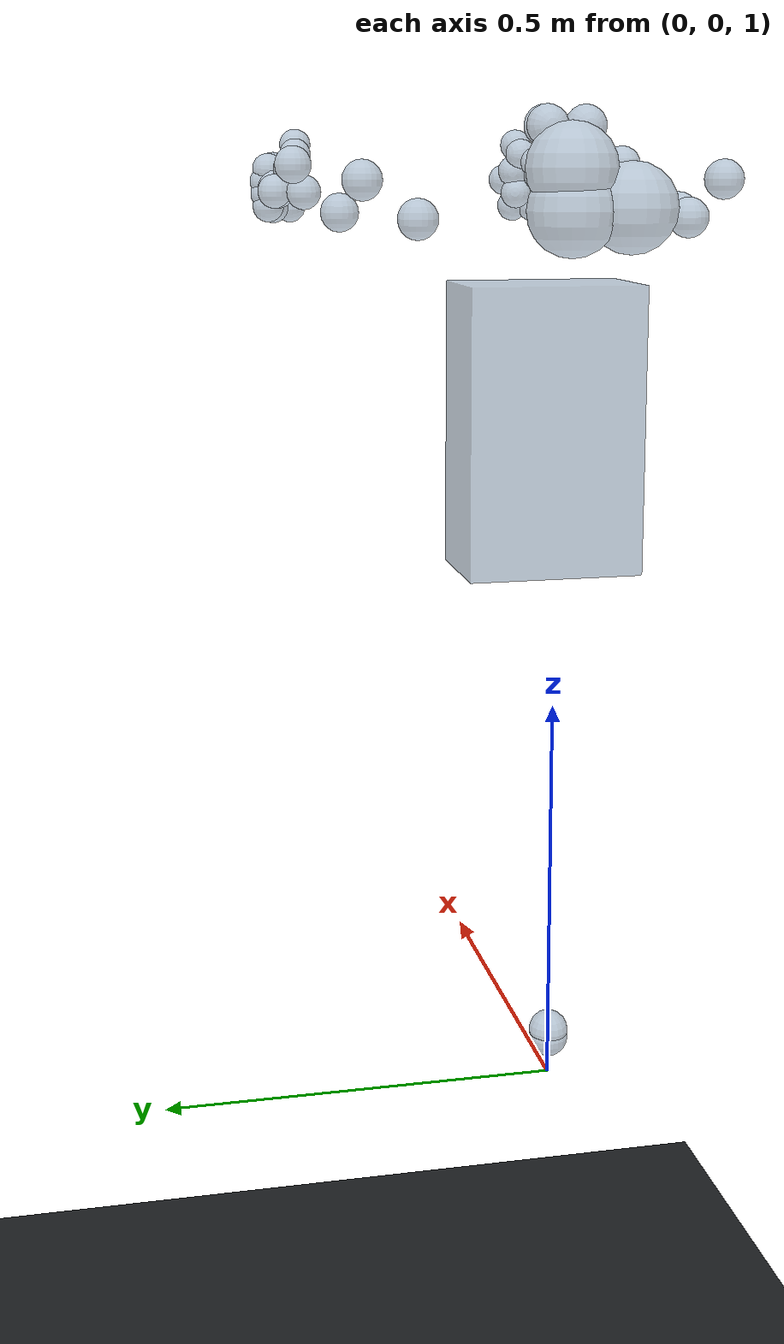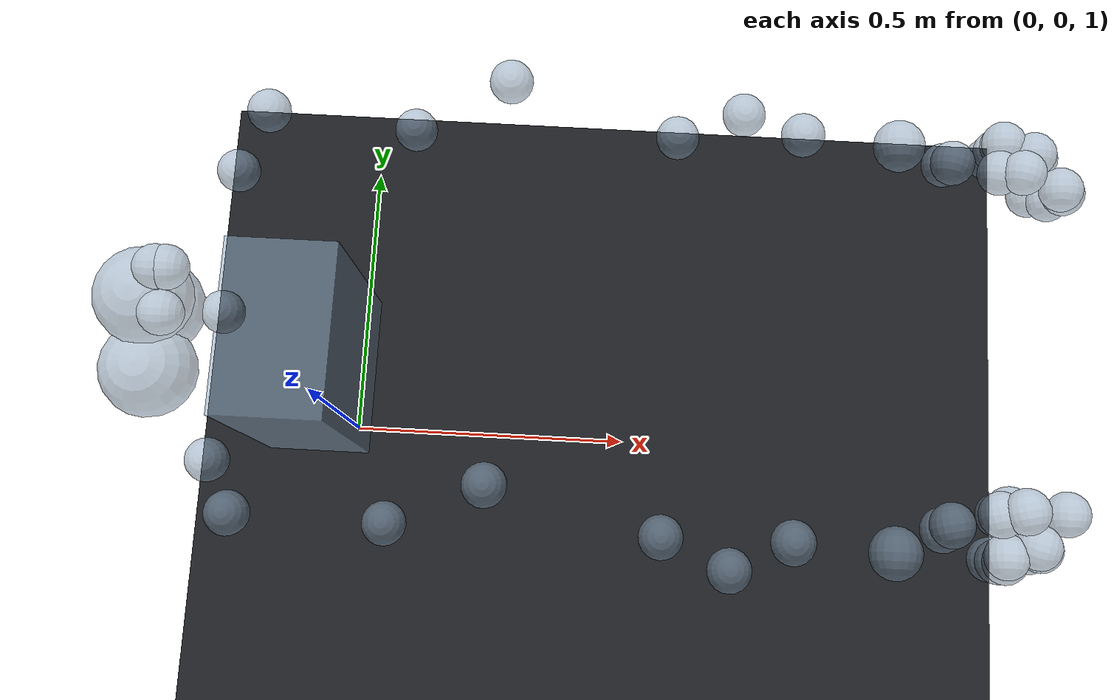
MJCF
<?xml version='1.0' encoding='utf-8'?>
<mujoco model="dexmate_vega_u">
  <compiler angle="radian" />
  <option timestep="0.008333333" gravity="0 0 -9.81" />
  <default>
    <joint damping="0.3" armature="0.01" />
    <geom friction="0.8 0.01 0.001" density="250" />
  </default>
  <worldbody>
    <geom name="floor" type="plane" size="3 3 0.02" rgba="0.12 0.13 0.14 1" />
    <body name="base_link" pos="0 0 1.05">
      <freejoint name="base_link_freejoint" />
      <geom name="base_link_proxy" type="sphere" size="0.025" rgba="0.55 0.65 0.75 0.55" />
      <body name="lift_link" pos="0 0 0.01" quat="0.707109018 0 0 0.7071045443">
        <joint name="Lift" type="slide" axis="0 0 1" damping="0.3" armature="0.01" limited="true" range="0 0.4" />
        <geom name="lift_link_proxy" type="sphere" size="0.025" rgba="0.55 0.65 0.75 0.55" />
        <body name="torso_flip_link" pos="0 -0.06187 0.786" quat="1 0 0 0">
          <joint name="torso_flip" type="hinge" axis="1 0 0" damping="0.3" armature="0.01" limited="true" range="0 1" />
          <geom name="torso_flip_link_proxy" type="box" size="0.11 0.07 0.18" rgba="0.55 0.65 0.75 0.55" />
          <body name="arm_center" pos="0 0.03852 0.25982" quat="0.707109018 0 0 -0.7071045443">
            <geom name="arm_center_proxy" type="sphere" size="0.025" rgba="0.55 0.65 0.75 0.55" />
            <body name="head_l1" pos="-0.0735 -0.0725 0.014" quat="1 0 0 0">
              <joint name="head_j1" type="hinge" axis="0 1 0" damping="0.3" armature="0.01" limited="true" range="-1.483 1.483" />
              <geom name="head_l1_proxy" type="sphere" size="0.055" rgba="0.55 0.65 0.75 0.55" />
              <body name="head_l2" pos="0 0.0725 -0.0035" quat="1 0 0 0">
                <joint name="head_j2" type="hinge" axis="0 0 1" damping="0.3" armature="0.01" limited="true" range="-2.792 2.792" />
                <geom name="head_l2_proxy" type="sphere" size="0.055" rgba="0.55 0.65 0.75 0.55" />
                <body name="head_l3" pos="0 0.002 0.0495" quat="1 0 0 0">
                  <joint name="head_j3" type="hinge" axis="0 -1 0" damping="0.3" armature="0.01" limited="true" range="-1.378 1.483" />
                  <geom name="head_l3_proxy" type="sphere" size="0.055" rgba="0.55 0.65 0.75 0.55" />
                  <body name="zed_depth_frame" pos="0.025 0.023 0.0489" quat="0.5000031634 -0.5 0.4999968366 -0.5">
                    <geom name="zed_depth_frame_proxy" type="sphere" size="0.025" rgba="0.55 0.65 0.75 0.55" />
                  </body>
                  <body name="zed_left_camera" pos="0.0365 0.023 0.0489" quat="0.5000031634 -0.5 0.4999968366 -0.5">
                    <geom name="zed_left_camera_proxy" type="sphere" size="0.025" rgba="0.55 0.65 0.75 0.55" />
                  </body>
                  <body name="zed_right_camera" pos="0.0365 -0.027 0.0489" quat="0.5000031634 -0.5 0.4999968366 -0.5">
                    <geom name="zed_right_camera_proxy" type="sphere" size="0.025" rgba="0.55 0.65 0.75 0.55" />
                  </body>
                </body>
              </body>
            </body>
            <body name="L_arm_l1" pos="0 0.16946 0" quat="1 0 0 0">
              <joint name="L_arm_j1" type="hinge" axis="0 1 0" damping="0.3" armature="0.01" limited="true" range="-3.071 3.071" />
              <geom name="L_arm_l1_proxy" type="sphere" size="0.025" rgba="0.55 0.65 0.75 0.55" />
              <body name="L_arm_l2" pos="0.04 0.06 0.0454" quat="1 0 0 0">
                <joint name="L_arm_j2" type="hinge" axis="0 0 1" damping="0.3" armature="0.01" limited="true" range="-0.453 1.553" />
                <geom name="L_arm_l2_proxy" type="sphere" size="0.025" rgba="0.55 0.65 0.75 0.55" />
                <body name="L_arm_l3" pos="0.1644 0 -0.043" quat="1 0 0 0">
                  <joint name="L_arm_j3" type="hinge" axis="1 0 0" damping="0.3" armature="0.01" limited="true" range="-3.071 3.071" />
                  <geom name="L_arm_l3_proxy" type="sphere" size="0.025" rgba="0.55 0.65 0.75 0.55" />
                  <body name="L_arm_l4" pos="0.113 0.0433 0.06" quat="1 0 0 0">
                    <joint name="L_arm_j4" type="hinge" axis="0 1 0" damping="0.3" armature="0.01" limited="true" range="-3.071 0.244" />
                    <geom name="L_arm_l4_proxy" type="sphere" size="0.025" rgba="0.55 0.65 0.75 0.55" />
                    <body name="L_arm_l5" pos="0.1938 -0.0434 -0.04" quat="1 0 0 0">
                      <joint name="L_arm_j5" type="hinge" axis="1 0 0" damping="0.3" armature="0.01" limited="true" range="-3.071 3.071" />
                      <geom name="L_arm_l5_proxy" type="sphere" size="0.025" rgba="0.55 0.65 0.75 0.55" />
                      <body name="L_arm_l6" pos="0.0762 0.0319 0" quat="1 0 0 0">
                        <joint name="L_arm_j6" type="hinge" axis="0 1 0" damping="0.3" armature="0.01" limited="true" range="-1.396 1.396" />
                        <geom name="L_arm_l6_proxy" type="sphere" size="0.025" rgba="0.55 0.65 0.75 0.55" />
                        <body name="L_arm_l7" pos="0.065 -0.032 0.0319" quat="1 0 0 0">
                          <joint name="L_arm_j7" type="hinge" axis="0 0 1" damping="0.3" armature="0.01" limited="true" range="-1.378 1.117" />
                          <geom name="L_arm_l7_proxy" type="sphere" size="0.025" rgba="0.55 0.65 0.75 0.55" />
                          <body name="L_arm_l8" pos="0.11597 0 -0.032" quat="0.707109018 0 0.7071045443 0">
                            <geom name="L_arm_l8_proxy" type="sphere" size="0.025" rgba="0.55 0.65 0.75 0.55" />
                            <body name="L_ee" pos="0 0 0" quat="0.707109018 0 0 -0.7071045443">
                              <geom name="L_ee_proxy" type="sphere" size="0.025" rgba="0.55 0.65 0.75 0.55" />
                            </body>
                            <body name="L_hand_base" pos="0.00019 0.0039 0.00014" quat="0.5000031634 -0.5 0.5 0.4999968366">
                              <geom name="L_hand_base_proxy" type="sphere" size="0.03" rgba="0.55 0.65 0.75 0.55" />
                              <body name="L_th_l0" pos="-0.04608 0.01984 -0.02684" quat="0.9940212431 -0.0007220406894 -0.1089856794 -0.006585487083">
                                <joint name="L_th_j0" type="hinge" axis="-1 0 0" damping="0.3" armature="0.01" limited="true" range="-0.0158 1.605" />
                                <geom name="L_th_l0_proxy" type="sphere" size="0.025" rgba="0.55 0.65 0.75 0.55" />
                                <body name="L_th_l1" pos="-0.00675 0.02098 -0.0027" quat="0.999979102 0 0 0.006464954965">
                                  <joint name="L_th_j1" type="hinge" axis="0 0 -1" damping="0.3" armature="0.01" limited="true" range="-0.3468 0.1834" />
                                  <geom name="L_th_l1_proxy" type="sphere" size="0.025" rgba="0.55 0.65 0.75 0.55" />
                                  <body name="L_th_l2" pos="-0.05088 0.01301 -0.00202" quat="1 0 0 0">
                                    <joint name="L_th_j2" type="hinge" axis="0 0 -1" damping="0.3" armature="0.01" limited="true" range="-0.4298 0.2731" />
                                    <geom name="L_th_l2_proxy" type="sphere" size="0.025" rgba="0.55 0.65 0.75 0.55" />
                                    <body name="L_th_tip" pos="-0.023 0.0151 0.0018" quat="1 0 0 0">
                                      <geom name="L_th_tip_proxy" type="sphere" size="0.025" rgba="0.55 0.65 0.75 0.55" />
                                    </body>
                                  </body>
                                </body>
                              </body>
                              <body name="L_ff_l1" pos="-0.11269 0.03067 -0.00116" quat="0.99818646 -0.04375257024 -0.001810988858 -0.04130646355">
                                <joint name="L_ff_j1" type="hinge" axis="0 1 0" damping="0.3" armature="0.01" limited="true" range="-1.0946 0.2891" />
                                <geom name="L_ff_l1_proxy" type="sphere" size="0.025" rgba="0.55 0.65 0.75 0.55" />
                                <body name="L_ff_l2" pos="-0.03406 0 -0.01141" quat="0.9999999988 0 0 -4.999999998e-05">
                                  <joint name="L_ff_j2" type="hinge" axis="0 1 0" damping="0.3" armature="0.01" limited="true" range="-1.2101 0.3681" />
                                  <geom name="L_ff_l2_proxy" type="sphere" size="0.025" rgba="0.55 0.65 0.75 0.55" />
                                  <body name="L_ff_tip" pos="-0.03 0 -0.04" quat="1 0 0 0">
                                    <geom name="L_ff_tip_proxy" type="sphere" size="0.025" rgba="0.55 0.65 0.75 0.55" />
                                  </body>
                                </body>
                              </body>
                              <body name="L_mf_l1" pos="-0.11597 0.01047 0.00314" quat="0.9999780548 0 0 -0.006624951538">
                                <joint name="L_mf_j1" type="hinge" axis="0 1 0" damping="0.3" armature="0.01" limited="true" range="-1.0844 0.2801" />
                                <geom name="L_mf_l1_proxy" type="sphere" size="0.025" rgba="0.55 0.65 0.75 0.55" />
                                <body name="L_mf_l2" pos="-0.03829 0 -0.01467" quat="1 0 0 0">
                                  <joint name="L_mf_j2" type="hinge" axis="0 1 0" damping="0.3" armature="0.01" limited="true" range="-1.2026 0.3533" />
                                  <geom name="L_mf_l2_proxy" type="sphere" size="0.025" rgba="0.55 0.65 0.75 0.55" />
                                  <body name="L_mf_tip" pos="-0.0304 0 -0.0397" quat="1 0 0 0">
                                    <geom name="L_mf_tip_proxy" type="sphere" size="0.025" rgba="0.55 0.65 0.75 0.55" />
                                  </body>
                                </body>
                              </body>
                              <body name="L_rf_l1" pos="-0.11324 -0.00937 0.00239" quat="0.9995995817 0 0 0.02829622262">
                                <joint name="L_rf_j1" type="hinge" axis="0 1 0" damping="0.3" armature="0.01" limited="true" range="-1.0154 0.284" />
                                <geom name="L_rf_l1_proxy" type="sphere" size="0.025" rgba="0.55 0.65 0.75 0.55" />
                                <body name="L_rf_l2" pos="-0.03364 0 -0.01258" quat="0.9999999988 0 0 -4.999999998e-05">
                                  <joint name="L_rf_j2" type="hinge" axis="0 1 0" damping="0.3" armature="0.01" limited="true" range="-1.1156 0.3599" />
                                  <geom name="L_rf_l2_proxy" type="sphere" size="0.025" rgba="0.55 0.65 0.75 0.55" />
                                  <body name="L_rf_tip" pos="-0.0272 0 -0.042" quat="1 0 0 0">
                                    <geom name="L_rf_tip_proxy" type="sphere" size="0.025" rgba="0.55 0.65 0.75 0.55" />
                                  </body>
                                </body>
                              </body>
                              <body name="L_lf_l1" pos="-0.10947 -0.02964 -0.00017" quat="0.9972975934 0.04382342614 -0.002590300008 0.05890931873">
                                <joint name="L_lf_j1" type="hinge" axis="0 1 0" damping="0.3" armature="0.01" limited="true" range="-1.0118 0.2811" />
                                <geom name="L_lf_l1_proxy" type="sphere" size="0.025" rgba="0.55 0.65 0.75 0.55" />
                                <body name="L_lf_l2" pos="-0.02974 5.0315e-05 -0.01163" quat="0.9999999999 1.05275e-05 0 0">
                                  <joint name="L_lf_j2" type="hinge" axis="0 1 0" damping="0.3" armature="0.01" limited="true" range="-1.1073 0.4014" />
                                  <geom name="L_lf_l2_proxy" type="sphere" size="0.025" rgba="0.55 0.65 0.75 0.55" />
                                  <body name="L_lf_tip" pos="-0.0182 0 -0.0306" quat="1 0 0 0">
                                    <geom name="L_lf_tip_proxy" type="sphere" size="0.025" rgba="0.55 0.65 0.75 0.55" />
                                  </body>
                                </body>
                              </body>
                            </body>
                          </body>
                        </body>
                      </body>
                    </body>
                  </body>
                </body>
              </body>
            </body>
            <body name="R_arm_l1" pos="0 -0.16946 0" quat="1 0 0 0">
              <joint name="R_arm_j1" type="hinge" axis="0 -1 0" damping="0.3" armature="0.01" limited="true" range="-3.071 3.071" />
              <geom name="R_arm_l1_proxy" type="sphere" size="0.025" rgba="0.55 0.65 0.75 0.55" />
              <body name="R_arm_l2" pos="0.04 -0.06 0.0454" quat="1 0 0 0">
                <joint name="R_arm_j2" type="hinge" axis="0 0 1" damping="0.3" armature="0.01" limited="true" range="-1.553 0.453" />
                <geom name="R_arm_l2_proxy" type="sphere" size="0.025" rgba="0.55 0.65 0.75 0.55" />
                <body name="R_arm_l3" pos="0.1644 0 -0.043" quat="1 0 0 0">
                  <joint name="R_arm_j3" type="hinge" axis="1 0 0" damping="0.3" armature="0.01" limited="true" range="-3.071 3.071" />
                  <geom name="R_arm_l3_proxy" type="sphere" size="0.025" rgba="0.55 0.65 0.75 0.55" />
                  <body name="R_arm_l4" pos="0.113 0.0433 0.06" quat="1 0 0 0">
                    <joint name="R_arm_j4" type="hinge" axis="0 1 0" damping="0.3" armature="0.01" limited="true" range="-3.071 0.244" />
                    <geom name="R_arm_l4_proxy" type="sphere" size="0.025" rgba="0.55 0.65 0.75 0.55" />
                    <body name="R_arm_l5" pos="0.1938 -0.0434 -0.04" quat="1 0 0 0">
                      <joint name="R_arm_j5" type="hinge" axis="1 0 0" damping="0.3" armature="0.01" limited="true" range="-3.071 3.071" />
                      <geom name="R_arm_l5_proxy" type="sphere" size="0.025" rgba="0.55 0.65 0.75 0.55" />
                      <body name="R_arm_l6" pos="0.0762 -0.0319 0" quat="1 0 0 0">
                        <joint name="R_arm_j6" type="hinge" axis="0 -1 0" damping="0.3" armature="0.01" limited="true" range="-1.396 1.396" />
                        <geom name="R_arm_l6_proxy" type="sphere" size="0.025" rgba="0.55 0.65 0.75 0.55" />
                        <body name="R_arm_l7" pos="0.065 0.032 0.0319" quat="1 0 0 0">
                          <joint name="R_arm_j7" type="hinge" axis="0 0 1" damping="0.3" armature="0.01" limited="true" range="-1.117 1.378" />
                          <geom name="R_arm_l7_proxy" type="sphere" size="0.025" rgba="0.55 0.65 0.75 0.55" />
                          <body name="R_arm_l8" pos="0.11597 0 -0.032" quat="0.707109018 0 0.7071045443 0">
                            <geom name="R_arm_l8_proxy" type="sphere" size="0.025" rgba="0.55 0.65 0.75 0.55" />
                            <body name="R_ee" pos="0 0 0" quat="0.707109018 0 0 0.7071045443">
                              <geom name="R_ee_proxy" type="sphere" size="0.025" rgba="0.55 0.65 0.75 0.55" />
                            </body>
                            <body name="R_hand_base" pos="0.00019 -0.0039 0.00014" quat="0.5000031634 0.5 0.5 -0.4999968366">
                              <geom name="R_hand_base_proxy" type="sphere" size="0.03" rgba="0.55 0.65 0.75 0.55" />
                              <body name="R_th_l0" pos="-0.04608 -0.01984 -0.02687" quat="0.9940212558 -0.0007043800483 -0.1089950173 0.006429085906">
                                <joint name="R_th_j0" type="hinge" axis="1 0 0" damping="0.3" armature="0.01" limited="true" range="-0.0158 1.605" />
                                <geom name="R_th_l0_proxy" type="sphere" size="0.025" rgba="0.55 0.65 0.75 0.55" />
                                <body name="R_th_l1" pos="-0.00675 -0.02097 -0.00276" quat="-1.067613618e-05 0.006446304331 0.9999781762 0.001446425165">
                                  <joint name="R_th_j1" type="hinge" axis="0 0 -1" damping="0.3" armature="0.01" limited="true" range="-0.3468 0.1834" />
                                  <geom name="R_th_l1_proxy" type="sphere" size="0.025" rgba="0.55 0.65 0.75 0.55" />
                                  <body name="R_th_l2" pos="0.05088 -0.01301 0.00202" quat="1 0 0 0">
                                    <joint name="R_th_j2" type="hinge" axis="0 0 -1" damping="0.3" armature="0.01" limited="true" range="-0.4298 0.2731" />
                                    <geom name="R_th_l2_proxy" type="sphere" size="0.025" rgba="0.55 0.65 0.75 0.55" />
                                    <body name="R_th_tip" pos="0.023 -0.0151 -0.0018" quat="1 0 0 0">
                                      <geom name="R_th_tip_proxy" type="sphere" size="0.025" rgba="0.55 0.65 0.75 0.55" />
                                    </body>
                                  </body>
                                </body>
                              </body>
                              <body name="R_ff_l1" pos="-0.11269 -0.03066 -0.00119" quat="0.99818646 0.04375257024 -0.001810988858 0.04130646355">
                                <joint name="R_ff_j1" type="hinge" axis="0 1 0" damping="0.3" armature="0.01" limited="true" range="-1.0946 0.2891" />
                                <geom name="R_ff_l1_proxy" type="sphere" size="0.025" rgba="0.55 0.65 0.75 0.55" />
                                <body name="R_ff_l2" pos="-0.03406 0 -0.01141" quat="0.9999999986 -1.499999998e-05 -7.499999997e-1 4.999999997e-05">
                                  <joint name="R_ff_j2" type="hinge" axis="0 1 0" damping="0.3" armature="0.01" limited="true" range="-1.2101 0.3681" />
                                  <geom name="R_ff_l2_proxy" type="sphere" size="0.025" rgba="0.55 0.65 0.75 0.55" />
                                  <body name="R_ff_tip" pos="-0.03 0 -0.04" quat="1 0 0 0">
                                    <geom name="R_ff_tip_proxy" type="sphere" size="0.025" rgba="0.55 0.65 0.75 0.55" />
                                  </body>
                                </body>
                              </body>
                              <body name="R_mf_l1" pos="-0.11597 -0.01047 0.00312" quat="0.9999780548 0 0 0.006624951538">
                                <joint name="R_mf_j1" type="hinge" axis="0 1 0" damping="0.3" armature="0.01" limited="true" range="-1.0844 0.2801" />
                                <geom name="R_mf_l1_proxy" type="sphere" size="0.025" rgba="0.55 0.65 0.75 0.55" />
                                <body name="R_mf_l2" pos="-0.03829 0 -0.01467" quat="1 0 0 0">
                                  <joint name="R_mf_j2" type="hinge" axis="0 1 0" damping="0.3" armature="0.01" limited="true" range="-1.2026 0.3533" />
                                  <geom name="R_mf_l2_proxy" type="sphere" size="0.025" rgba="0.55 0.65 0.75 0.55" />
                                  <body name="R_mf_tip" pos="-0.0304 0 -0.0397" quat="1 0 0 0">
                                    <geom name="R_mf_tip_proxy" type="sphere" size="0.025" rgba="0.55 0.65 0.75 0.55" />
                                  </body>
                                </body>
                              </body>
                              <body name="R_rf_l1" pos="-0.11324 0.00937 0.00237" quat="0.9995995817 0 0 -0.02829622262">
                                <joint name="R_rf_j1" type="hinge" axis="0 1 0" damping="0.3" armature="0.01" limited="true" range="-1.0154 0.284" />
                                <geom name="R_rf_l1_proxy" type="sphere" size="0.025" rgba="0.55 0.65 0.75 0.55" />
                                <body name="R_rf_l2" pos="-0.03364 0 -0.01258" quat="0.9999999986 -1.499999998e-05 -7.499999997e-1 4.999999997e-05">
                                  <joint name="R_rf_j2" type="hinge" axis="0 1 0" damping="0.3" armature="0.01" limited="true" range="-1.1156 0.3599" />
                                  <geom name="R_rf_l2_proxy" type="sphere" size="0.025" rgba="0.55 0.65 0.75 0.55" />
                                  <body name="R_rf_tip" pos="-0.0272 0 -0.042" quat="1 0 0 0">
                                    <geom name="R_rf_tip_proxy" type="sphere" size="0.025" rgba="0.55 0.65 0.75 0.55" />
                                  </body>
                                </body>
                              </body>
                              <body name="R_lf_l1" pos="-0.10947 0.02964 -0.00019" quat="0.9972975934 -0.04382342614 -0.002590300008 -0.05890931873">
                                <joint name="R_lf_j1" type="hinge" axis="0 1 0" damping="0.3" armature="0.01" limited="true" range="-1.0118 0.2811" />
                                <geom name="R_lf_l1_proxy" type="sphere" size="0.025" rgba="0.55 0.65 0.75 0.55" />
                                <body name="R_lf_l2" pos="-0.02974 -5e-05 -0.01163" quat="0.9999999999 -1e-05 0 0">
                                  <joint name="R_lf_j2" type="hinge" axis="0 1 0" damping="0.3" armature="0.01" limited="true" range="-1.1073 0.4014" />
                                  <geom name="R_lf_l2_proxy" type="sphere" size="0.025" rgba="0.55 0.65 0.75 0.55" />
                                  <body name="R_lf_tip" pos="-0.0182 0 -0.0306" quat="1 0 0 0">
                                    <geom name="R_lf_tip_proxy" type="sphere" size="0.025" rgba="0.55 0.65 0.75 0.55" />
                                  </body>
                                </body>
                              </body>
                            </body>
                          </body>
                        </body>
                      </body>
                    </body>
                  </body>
                </body>
              </body>
            </body>
          </body>
        </body>
      </body>
    </body>
  </worldbody>
  <actuator>
    <position name="Lift_position" joint="Lift" kp="15" ctrlrange="0 0.4" />
    <position name="torso_flip_position" joint="torso_flip" kp="15" ctrlrange="0 1" />
    <position name="head_j1_position" joint="head_j1" kp="15" ctrlrange="-1.483 1.483" />
    <position name="head_j2_position" joint="head_j2" kp="15" ctrlrange="-2.792 2.792" />
    <position name="head_j3_position" joint="head_j3" kp="15" ctrlrange="-1.378 1.483" />
    <position name="L_arm_j1_position" joint="L_arm_j1" kp="15" ctrlrange="-3.071 3.071" />
    <position name="L_arm_j2_position" joint="L_arm_j2" kp="15" ctrlrange="-0.453 1.553" />
    <position name="L_arm_j3_position" joint="L_arm_j3" kp="15" ctrlrange="-3.071 3.071" />
    <position name="L_arm_j4_position" joint="L_arm_j4" kp="15" ctrlrange="-3.071 0.244" />
    <position name="L_arm_j5_position" joint="L_arm_j5" kp="15" ctrlrange="-3.071 3.071" />
    <position name="L_arm_j6_position" joint="L_arm_j6" kp="15" ctrlrange="-1.396 1.396" />
    <position name="L_arm_j7_position" joint="L_arm_j7" kp="15" ctrlrange="-1.378 1.117" />
    <position name="L_th_j0_position" joint="L_th_j0" kp="15" ctrlrange="-0.0158 1.605" />
    <position name="L_th_j1_position" joint="L_th_j1" kp="15" ctrlrange="-0.3468 0.1834" />
    <position name="L_th_j2_position" joint="L_th_j2" kp="15" ctrlrange="-0.4298 0.2731" />
    <position name="L_ff_j1_position" joint="L_ff_j1" kp="15" ctrlrange="-1.0946 0.2891" />
    <position name="L_ff_j2_position" joint="L_ff_j2" kp="15" ctrlrange="-1.2101 0.3681" />
    <position name="L_mf_j1_position" joint="L_mf_j1" kp="15" ctrlrange="-1.0844 0.2801" />
    <position name="L_mf_j2_position" joint="L_mf_j2" kp="15" ctrlrange="-1.2026 0.3533" />
    <position name="L_rf_j1_position" joint="L_rf_j1" kp="15" ctrlrange="-1.0154 0.284" />
    <position name="L_rf_j2_position" joint="L_rf_j2" kp="15" ctrlrange="-1.1156 0.3599" />
    <position name="L_lf_j1_position" joint="L_lf_j1" kp="15" ctrlrange="-1.0118 0.2811" />
    <position name="L_lf_j2_position" joint="L_lf_j2" kp="15" ctrlrange="-1.1073 0.4014" />
    <position name="R_arm_j1_position" joint="R_arm_j1" kp="15" ctrlrange="-3.071 3.071" />
    <position name="R_arm_j2_position" joint="R_arm_j2" kp="15" ctrlrange="-1.553 0.453" />
    <position name="R_arm_j3_position" joint="R_arm_j3" kp="15" ctrlrange="-3.071 3.071" />
    <position name="R_arm_j4_position" joint="R_arm_j4" kp="15" ctrlrange="-3.071 0.244" />
    <position name="R_arm_j5_position" joint="R_arm_j5" kp="15" ctrlrange="-3.071 3.071" />
    <position name="R_arm_j6_position" joint="R_arm_j6" kp="15" ctrlrange="-1.396 1.396" />
    <position name="R_arm_j7_position" joint="R_arm_j7" kp="15" ctrlrange="-1.117 1.378" />
    <position name="R_th_j0_position" joint="R_th_j0" kp="15" ctrlrange="-0.0158 1.605" />
    <position name="R_th_j1_position" joint="R_th_j1" kp="15" ctrlrange="-0.3468 0.1834" />
    <position name="R_th_j2_position" joint="R_th_j2" kp="15" ctrlrange="-0.4298 0.2731" />
    <position name="R_ff_j1_position" joint="R_ff_j1" kp="15" ctrlrange="-1.0946 0.2891" />
    <position name="R_ff_j2_position" joint="R_ff_j2" kp="15" ctrlrange="-1.2101 0.3681" />
    <position name="R_mf_j1_position" joint="R_mf_j1" kp="15" ctrlrange="-1.0844 0.2801" />
    <position name="R_mf_j2_position" joint="R_mf_j2" kp="15" ctrlrange="-1.2026 0.3533" />
    <position name="R_rf_j1_position" joint="R_rf_j1" kp="15" ctrlrange="-1.0154 0.284" />
    <position name="R_rf_j2_position" joint="R_rf_j2" kp="15" ctrlrange="-1.1156 0.3599" />
    <position name="R_lf_j1_position" joint="R_lf_j1" kp="15" ctrlrange="-1.0118 0.2811" />
    <position name="R_lf_j2_position" joint="R_lf_j2" kp="15" ctrlrange="-1.1073 0.4014" />
  </actuator>
  <sensor>
    <jointpos name="Lift_pos" joint="Lift" />
    <jointpos name="torso_flip_pos" joint="torso_flip" />
    <jointpos name="head_j1_pos" joint="head_j1" />
    <jointpos name="head_j2_pos" joint="head_j2" />
    <jointpos name="head_j3_pos" joint="head_j3" />
    <jointpos name="L_arm_j1_pos" joint="L_arm_j1" />
    <jointpos name="L_arm_j2_pos" joint="L_arm_j2" />
    <jointpos name="L_arm_j3_pos" joint="L_arm_j3" />
    <jointpos name="L_arm_j4_pos" joint="L_arm_j4" />
    <jointpos name="L_arm_j5_pos" joint="L_arm_j5" />
    <jointpos name="L_arm_j6_pos" joint="L_arm_j6" />
    <jointpos name="L_arm_j7_pos" joint="L_arm_j7" />
    <jointpos name="L_th_j0_pos" joint="L_th_j0" />
    <jointpos name="L_th_j1_pos" joint="L_th_j1" />
    <jointpos name="L_th_j2_pos" joint="L_th_j2" />
    <jointpos name="L_ff_j1_pos" joint="L_ff_j1" />
    <jointpos name="L_ff_j2_pos" joint="L_ff_j2" />
    <jointpos name="L_mf_j1_pos" joint="L_mf_j1" />
    <jointpos name="L_mf_j2_pos" joint="L_mf_j2" />
    <jointpos name="L_rf_j1_pos" joint="L_rf_j1" />
    <jointpos name="L_rf_j2_pos" joint="L_rf_j2" />
    <jointpos name="L_lf_j1_pos" joint="L_lf_j1" />
    <jointpos name="L_lf_j2_pos" joint="L_lf_j2" />
    <jointpos name="R_arm_j1_pos" joint="R_arm_j1" />
    <jointpos name="R_arm_j2_pos" joint="R_arm_j2" />
    <jointpos name="R_arm_j3_pos" joint="R_arm_j3" />
    <jointpos name="R_arm_j4_pos" joint="R_arm_j4" />
    <jointpos name="R_arm_j5_pos" joint="R_arm_j5" />
    <jointpos name="R_arm_j6_pos" joint="R_arm_j6" />
    <jointpos name="R_arm_j7_pos" joint="R_arm_j7" />
    <jointpos name="R_th_j0_pos" joint="R_th_j0" />
    <jointpos name="R_th_j1_pos" joint="R_th_j1" />
    <jointpos name="R_th_j2_pos" joint="R_th_j2" />
    <jointpos name="R_ff_j1_pos" joint="R_ff_j1" />
    <jointpos name="R_ff_j2_pos" joint="R_ff_j2" />
    <jointpos name="R_mf_j1_pos" joint="R_mf_j1" />
    <jointpos name="R_mf_j2_pos" joint="R_mf_j2" />
    <jointpos name="R_rf_j1_pos" joint="R_rf_j1" />
    <jointpos name="R_rf_j2_pos" joint="R_rf_j2" />
    <jointpos name="R_lf_j1_pos" joint="R_lf_j1" />
    <jointpos name="R_lf_j2_pos" joint="R_lf_j2" />
  </sensor>
</mujoco>
